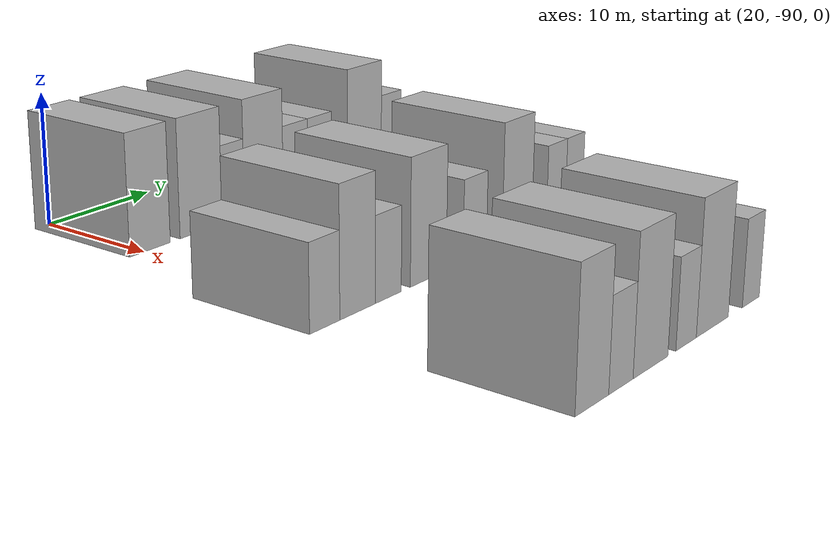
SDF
<sdf version="1.6">
 <world name="default">
  <model name="building_40">
   <static>1</static>
   <pose>25.0000 -89.3927 0 0.000000 0.000000 0.000000</pose>
   <link name="link">
    <pose>0 0 4.50 0 0 0</pose>
    <collision name="collision"><geometry><box><size>10.0000 3.9752 9.0000</size></box></geometry></collision>
    <visual name="visual">
     <cast_shadows>0</cast_shadows>
     <geometry><box><size>10.0000 3.9752 9.0000</size></box></geometry>
     <material>
      <script>
       <uri>model://HANNAS_wall/materials/scripts</uri>
       <uri>model://HANNAS_wall/materials/textures</uri>
       <name>vrc/HANNAS_wall</name>
      </script>
     </material>
    </visual>
   </link>
  </model>
  <model name="building_41">
   <static>1</static>
   <pose>25.0000 -84.1978 0 0.000000 0.000000 0.000000</pose>
   <link name="link">
    <pose>0 0 4.50 0 0 0</pose>
    <collision name="collision"><geometry><box><size>10.0000 4.4145 9.0000</size></box></geometry></collision>
    <visual name="visual">
     <cast_shadows>0</cast_shadows>
     <geometry><box><size>10.0000 4.4145 9.0000</size></box></geometry>
     <material>
      <script>
       <uri>model://HANNAS_wall/materials/scripts</uri>
       <uri>model://HANNAS_wall/materials/textures</uri>
       <name>vrc/HANNAS_wall</name>
      </script>
     </material>
    </visual>
   </link>
  </model>
  <model name="building_42">
   <static>1</static>
   <pose>25.0000 -80.7613 0 0.000000 0.000000 0.000000</pose>
   <link name="link">
    <pose>0 0 3.00 0 0 0</pose>
    <collision name="collision"><geometry><box><size>10.0000 2.4583 6.0000</size></box></geometry></collision>
    <visual name="visual">
     <cast_shadows>0</cast_shadows>
     <geometry><box><size>10.0000 2.4583 6.0000</size></box></geometry>
     <material>
      <script>
       <uri>model://HANNAS_wall/materials/scripts</uri>
       <uri>model://HANNAS_wall/materials/textures</uri>
       <name>vrc/HANNAS_wall</name>
      </script>
     </material>
    </visual>
   </link>
  </model>
  <model name="building_43">
   <static>1</static>
   <pose>25.0000 -77.3106 0 0.000000 0.000000 0.000000</pose>
   <link name="link">
    <pose>0 0 4.50 0 0 0</pose>
    <collision name="collision"><geometry><box><size>10.0000 4.4431 9.0000</size></box></geometry></collision>
    <visual name="visual">
     <cast_shadows>0</cast_shadows>
     <geometry><box><size>10.0000 4.4431 9.0000</size></box></geometry>
     <material>
      <script>
       <uri>model://HANNAS_wall/materials/scripts</uri>
       <uri>model://HANNAS_wall/materials/textures</uri>
       <name>vrc/HANNAS_wall</name>
      </script>
     </material>
    </visual>
   </link>
  </model>
  <model name="building_44">
   <static>1</static>
   <pose>25.0000 -73.6004 0 0.000000 0.000000 0.000000</pose>
   <link name="link">
    <pose>0 0 3.00 0 0 0</pose>
    <collision name="collision"><geometry><box><size>10.0000 2.9773 6.0000</size></box></geometry></collision>
    <visual name="visual">
     <cast_shadows>0</cast_shadows>
     <geometry><box><size>10.0000 2.9773 6.0000</size></box></geometry>
     <material>
      <script>
       <uri>model://HANNAS_wall/materials/scripts</uri>
       <uri>model://HANNAS_wall/materials/textures</uri>
       <name>vrc/HANNAS_wall</name>
      </script>
     </material>
    </visual>
   </link>
  </model>
  <model name="building_45">
   <static>1</static>
   <pose>25.0000 -70.6424 0 0.000000 0.000000 0.000000</pose>
   <link name="link">
    <pose>0 0 3.00 0 0 0</pose>
    <collision name="collision"><geometry><box><size>10.0000 2.9387 6.0000</size></box></geometry></collision>
    <visual name="visual">
     <cast_shadows>0</cast_shadows>
     <geometry><box><size>10.0000 2.9387 6.0000</size></box></geometry>
     <material>
      <script>
       <uri>model://HANNAS_wall/materials/scripts</uri>
       <uri>model://HANNAS_wall/materials/textures</uri>
       <name>vrc/HANNAS_wall</name>
      </script>
     </material>
    </visual>
   </link>
  </model>
  <model name="building_46">
   <static>1</static>
   <pose>25.0000 -64.9526 0 0.000000 0.000000 0.000000</pose>
   <link name="link">
    <pose>0 0 4.50 0 0 0</pose>
    <collision name="collision"><geometry><box><size>10.0000 4.4409 9.0000</size></box></geometry></collision>
    <visual name="visual">
     <cast_shadows>0</cast_shadows>
     <geometry><box><size>10.0000 4.4409 9.0000</size></box></geometry>
     <material>
      <script>
       <uri>model://HANNAS_wall/materials/scripts</uri>
       <uri>model://HANNAS_wall/materials/textures</uri>
       <name>vrc/HANNAS_wall</name>
      </script>
     </material>
    </visual>
   </link>
  </model>
  <model name="building_47">
   <static>1</static>
   <pose>25.0000 -61.3813 0 0.000000 0.000000 0.000000</pose>
   <link name="link">
    <pose>0 0 3.00 0 0 0</pose>
    <collision name="collision"><geometry><box><size>10.0000 2.7017 6.0000</size></box></geometry></collision>
    <visual name="visual">
     <cast_shadows>0</cast_shadows>
     <geometry><box><size>10.0000 2.7017 6.0000</size></box></geometry>
     <material>
      <script>
       <uri>model://HANNAS_wall/materials/scripts</uri>
       <uri>model://HANNAS_wall/materials/textures</uri>
       <name>vrc/HANNAS_wall</name>
      </script>
     </material>
    </visual>
   </link>
  </model>
  <model name="building_153">
   <static>1</static>
   <pose>44.0000 -92.8399 0 0.000000 0.000000 0.000000</pose>
   <link name="link">
    <pose>0 0 3.00 0 0 0</pose>
    <collision name="collision"><geometry><box><size>10.0000 2.9452 6.0000</size></box></geometry></collision>
    <visual name="visual">
     <cast_shadows>0</cast_shadows>
     <geometry><box><size>10.0000 2.9452 6.0000</size></box></geometry>
     <material>
      <script>
       <uri>model://HANNAS_wall/materials/scripts</uri>
       <uri>model://HANNAS_wall/materials/textures</uri>
       <name>vrc/HANNAS_wall</name>
      </script>
     </material>
    </visual>
   </link>
  </model>
  <model name="building_154">
   <static>1</static>
   <pose>44.0000 -89.5427 0 0.000000 0.000000 0.000000</pose>
   <link name="link">
    <pose>0 0 4.50 0 0 0</pose>
    <collision name="collision"><geometry><box><size>10.0000 3.6491 9.0000</size></box></geometry></collision>
    <visual name="visual">
     <cast_shadows>0</cast_shadows>
     <geometry><box><size>10.0000 3.6491 9.0000</size></box></geometry>
     <material>
      <script>
       <uri>model://HANNAS_wall/materials/scripts</uri>
       <uri>model://HANNAS_wall/materials/textures</uri>
       <name>vrc/HANNAS_wall</name>
      </script>
     </material>
    </visual>
   </link>
  </model>
  <model name="building_155">
   <static>1</static>
   <pose>44.0000 -86.3446 0 0.000000 0.000000 0.000000</pose>
   <link name="link">
    <pose>0 0 3.00 0 0 0</pose>
    <collision name="collision"><geometry><box><size>10.0000 2.7471 6.0000</size></box></geometry></collision>
    <visual name="visual">
     <cast_shadows>0</cast_shadows>
     <geometry><box><size>10.0000 2.7471 6.0000</size></box></geometry>
     <material>
      <script>
       <uri>model://HANNAS_wall/materials/scripts</uri>
       <uri>model://HANNAS_wall/materials/textures</uri>
       <name>vrc/HANNAS_wall</name>
      </script>
     </material>
    </visual>
   </link>
  </model>
  <model name="building_156">
   <static>1</static>
   <pose>44.0000 -81.9277 0 0.000000 0.000000 0.000000</pose>
   <link name="link">
    <pose>0 0 4.50 0 0 0</pose>
    <collision name="collision"><geometry><box><size>10.0000 4.0867 9.0000</size></box></geometry></collision>
    <visual name="visual">
     <cast_shadows>0</cast_shadows>
     <geometry><box><size>10.0000 4.0867 9.0000</size></box></geometry>
     <material>
      <script>
       <uri>model://HANNAS_wall/materials/scripts</uri>
       <uri>model://HANNAS_wall/materials/textures</uri>
       <name>vrc/HANNAS_wall</name>
      </script>
     </material>
    </visual>
   </link>
  </model>
  <model name="building_157">
   <static>1</static>
   <pose>44.0000 -76.4593 0 0.000000 0.000000 0.000000</pose>
   <link name="link">
    <pose>0 0 3.00 0 0 0</pose>
    <collision name="collision"><geometry><box><size>10.0000 2.8501 6.0000</size></box></geometry></collision>
    <visual name="visual">
     <cast_shadows>0</cast_shadows>
     <geometry><box><size>10.0000 2.8501 6.0000</size></box></geometry>
     <material>
      <script>
       <uri>model://HANNAS_wall/materials/scripts</uri>
       <uri>model://HANNAS_wall/materials/textures</uri>
       <name>vrc/HANNAS_wall</name>
      </script>
     </material>
    </visual>
   </link>
  </model>
  <model name="building_158">
   <static>1</static>
   <pose>44.0000 -71.0915 0 0.000000 0.000000 0.000000</pose>
   <link name="link">
    <pose>0 0 4.50 0 0 0</pose>
    <collision name="collision"><geometry><box><size>10.0000 3.8855 9.0000</size></box></geometry></collision>
    <visual name="visual">
     <cast_shadows>0</cast_shadows>
     <geometry><box><size>10.0000 3.8855 9.0000</size></box></geometry>
     <material>
      <script>
       <uri>model://HANNAS_wall/materials/scripts</uri>
       <uri>model://HANNAS_wall/materials/textures</uri>
       <name>vrc/HANNAS_wall</name>
      </script>
     </material>
    </visual>
   </link>
  </model>
  <model name="building_159">
   <static>1</static>
   <pose>44.0000 -65.8329 0 0.000000 0.000000 0.000000</pose>
   <link name="link">
    <pose>0 0 3.00 0 0 0</pose>
    <collision name="collision"><geometry><box><size>10.0000 2.6318 6.0000</size></box></geometry></collision>
    <visual name="visual">
     <cast_shadows>0</cast_shadows>
     <geometry><box><size>10.0000 2.6318 6.0000</size></box></geometry>
     <material>
      <script>
       <uri>model://HANNAS_wall/materials/scripts</uri>
       <uri>model://HANNAS_wall/materials/textures</uri>
       <name>vrc/HANNAS_wall</name>
      </script>
     </material>
    </visual>
   </link>
  </model>
  <model name="building_160">
   <static>1</static>
   <pose>44.0000 -63.2803 0 0.000000 0.000000 0.000000</pose>
   <link name="link">
    <pose>0 0 3.00 0 0 0</pose>
    <collision name="collision"><geometry><box><size>10.0000 2.4733 6.0000</size></box></geometry></collision>
    <visual name="visual">
     <cast_shadows>0</cast_shadows>
     <geometry><box><size>10.0000 2.4733 6.0000</size></box></geometry>
     <material>
      <script>
       <uri>model://HANNAS_wall/materials/scripts</uri>
       <uri>model://HANNAS_wall/materials/textures</uri>
       <name>vrc/HANNAS_wall</name>
      </script>
     </material>
    </visual>
   </link>
  </model>
  <model name="building_272">
   <static>1</static>
   <pose>63.0000 -92.4684 0 0.000000 0.000000 0.000000</pose>
   <link name="link">
    <pose>0 0 4.50 0 0 0</pose>
    <collision name="collision"><geometry><box><size>10.0000 3.6322 9.0000</size></box></geometry></collision>
    <visual name="visual">
     <cast_shadows>0</cast_shadows>
     <geometry><box><size>10.0000 3.6322 9.0000</size></box></geometry>
     <material>
      <script>
       <uri>model://HANNAS_wall/materials/scripts</uri>
       <uri>model://HANNAS_wall/materials/textures</uri>
       <name>vrc/HANNAS_wall</name>
      </script>
     </material>
    </visual>
   </link>
  </model>
  <model name="building_273">
   <static>1</static>
   <pose>63.0000 -89.2691 0 0.000000 0.000000 0.000000</pose>
   <link name="link">
    <pose>0 0 3.00 0 0 0</pose>
    <collision name="collision"><geometry><box><size>10.0000 2.7665 6.0000</size></box></geometry></collision>
    <visual name="visual">
     <cast_shadows>0</cast_shadows>
     <geometry><box><size>10.0000 2.7665 6.0000</size></box></geometry>
     <material>
      <script>
       <uri>model://HANNAS_wall/materials/scripts</uri>
       <uri>model://HANNAS_wall/materials/textures</uri>
       <name>vrc/HANNAS_wall</name>
      </script>
     </material>
    </visual>
   </link>
  </model>
  <model name="building_274">
   <static>1</static>
   <pose>63.0000 -85.7985 0 0.000000 0.000000 0.000000</pose>
   <link name="link">
    <pose>0 0 4.50 0 0 0</pose>
    <collision name="collision"><geometry><box><size>10.0000 4.1747 9.0000</size></box></geometry></collision>
    <visual name="visual">
     <cast_shadows>0</cast_shadows>
     <geometry><box><size>10.0000 4.1747 9.0000</size></box></geometry>
     <material>
      <script>
       <uri>model://HANNAS_wall/materials/scripts</uri>
       <uri>model://HANNAS_wall/materials/textures</uri>
       <name>vrc/HANNAS_wall</name>
      </script>
     </material>
    </visual>
   </link>
  </model>
  <model name="building_275">
   <static>1</static>
   <pose>63.0000 -81.3963 0 0.000000 0.000000 0.000000</pose>
   <link name="link">
    <pose>0 0 3.00 0 0 0</pose>
    <collision name="collision"><geometry><box><size>10.0000 2.6297 6.0000</size></box></geometry></collision>
    <visual name="visual">
     <cast_shadows>0</cast_shadows>
     <geometry><box><size>10.0000 2.6297 6.0000</size></box></geometry>
     <material>
      <script>
       <uri>model://HANNAS_wall/materials/scripts</uri>
       <uri>model://HANNAS_wall/materials/textures</uri>
       <name>vrc/HANNAS_wall</name>
      </script>
     </material>
    </visual>
   </link>
  </model>
  <model name="building_276">
   <static>1</static>
   <pose>63.0000 -77.9146 0 0.000000 0.000000 0.000000</pose>
   <link name="link">
    <pose>0 0 4.50 0 0 0</pose>
    <collision name="collision"><geometry><box><size>10.0000 4.3338 9.0000</size></box></geometry></collision>
    <visual name="visual">
     <cast_shadows>0</cast_shadows>
     <geometry><box><size>10.0000 4.3338 9.0000</size></box></geometry>
     <material>
      <script>
       <uri>model://HANNAS_wall/materials/scripts</uri>
       <uri>model://HANNAS_wall/materials/textures</uri>
       <name>vrc/HANNAS_wall</name>
      </script>
     </material>
    </visual>
   </link>
  </model>
  <model name="building_277">
   <static>1</static>
   <pose>63.0000 -72.5063 0 0.000000 0.000000 0.000000</pose>
   <link name="link">
    <pose>0 0 3.00 0 0 0</pose>
    <collision name="collision"><geometry><box><size>10.0000 2.4826 6.0000</size></box></geometry></collision>
    <visual name="visual">
     <cast_shadows>0</cast_shadows>
     <geometry><box><size>10.0000 2.4826 6.0000</size></box></geometry>
     <material>
      <script>
       <uri>model://HANNAS_wall/materials/scripts</uri>
       <uri>model://HANNAS_wall/materials/textures</uri>
       <name>vrc/HANNAS_wall</name>
      </script>
     </material>
    </visual>
   </link>
  </model>
 </world>
</sdf>
